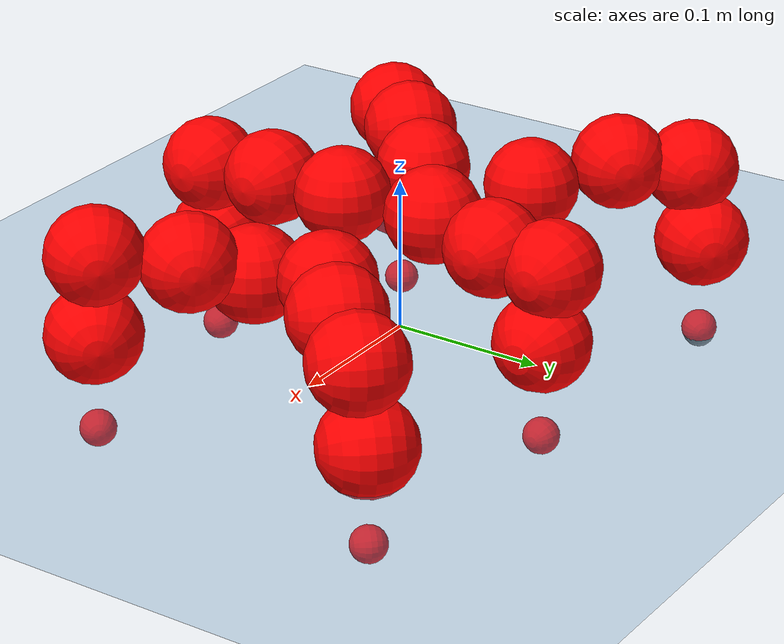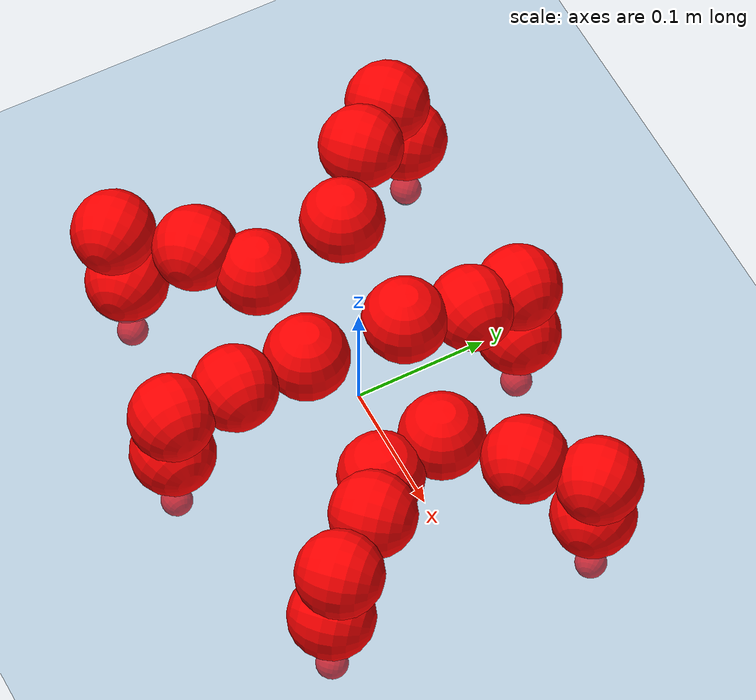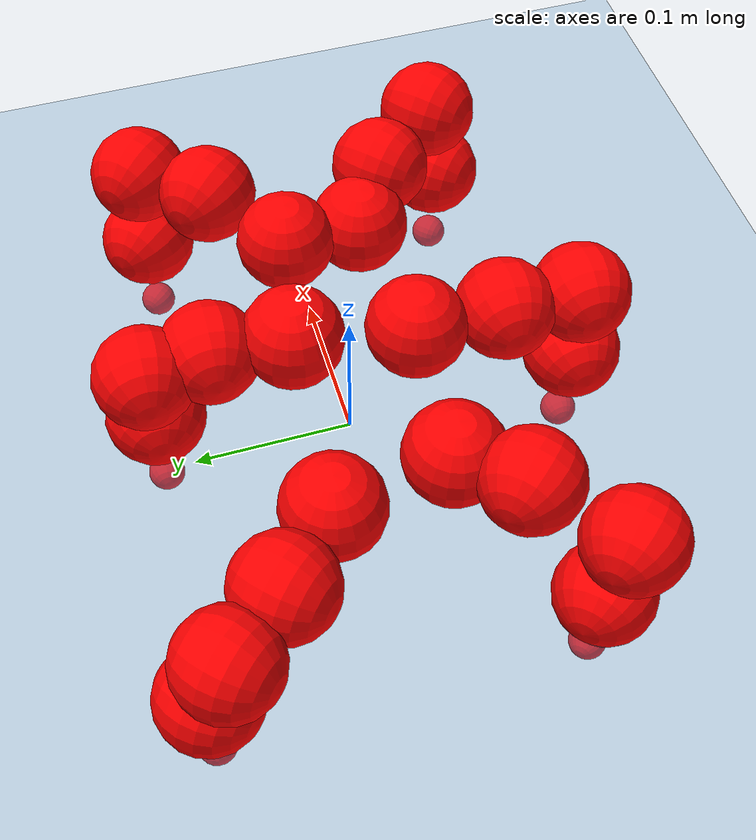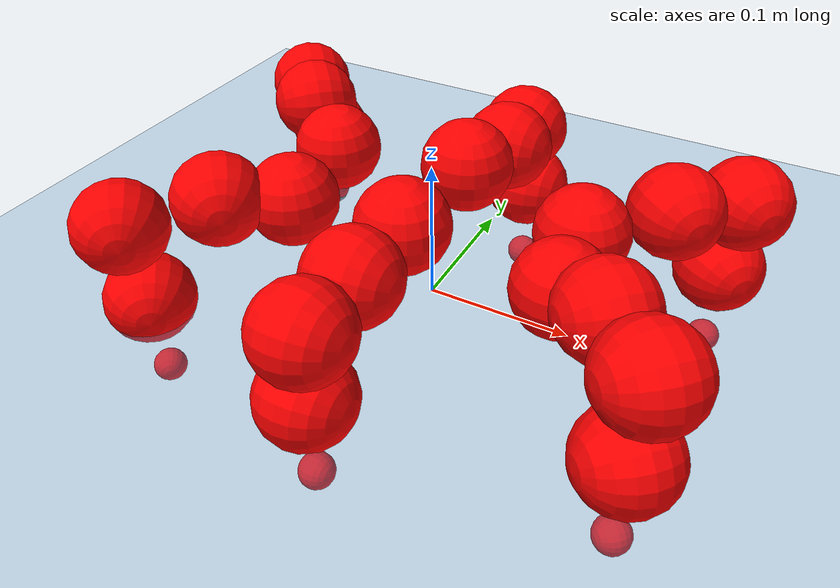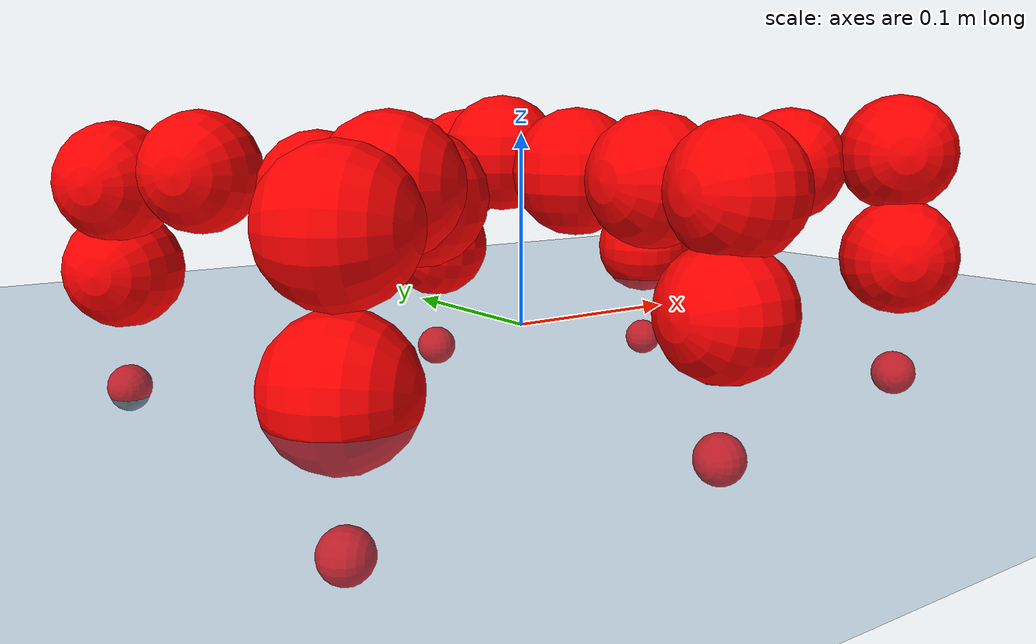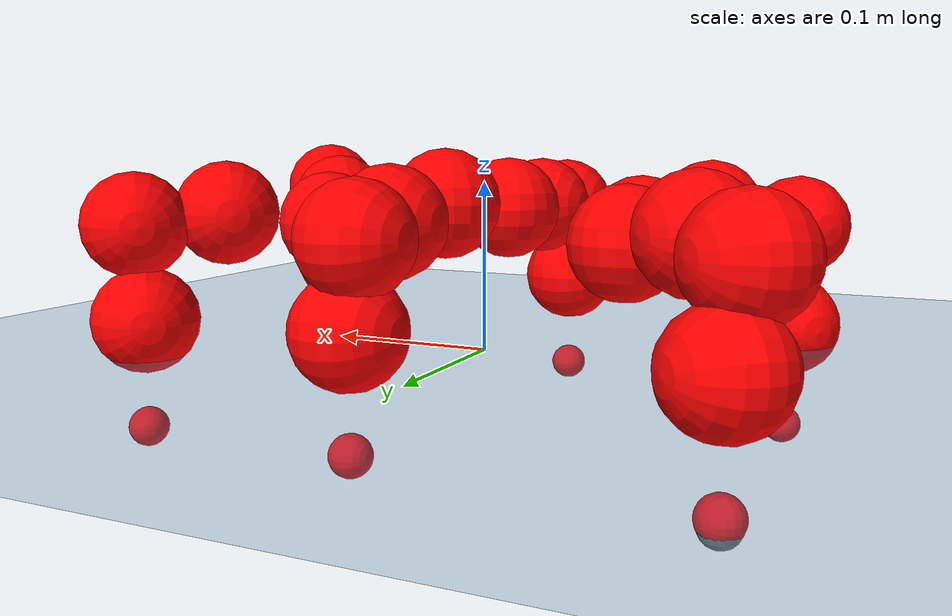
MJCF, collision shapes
<mujoco model="Golem">
  <compiler angle="radian" assetdir="assets" balanceinertia="true" inertiafromgeom="false"/>

  <option timestep="0.005" density="1.2" viscosity="2e-05"/>

  <size nkey="1"/>

  <visual>
    <quality shadowsize="8192"/>
    <map shadowclip="0.5"/>
  </visual>

  <default>
    <default class="/">
      <joint armature="0.01" damping="0.01" frictionloss="0.01"/>
      <geom contype="0" conaffinity="0" group="1" solref="-1000 -80"/>
      <site size="0.01 0.005 0.005" group="5"/>
      <general forcelimited="true" biastype="affine" gainprm="25" biasprm="0 -25 -0.5"/>
      <default class="visual">
        <geom type="mesh" group="2"/>
      </default>
      <default class="collision">
        <geom group="3"/>
      </default>
      <default class="foot">
        <geom size="0.01 0 0" condim="6" group="4" priority="1" solimp="0.015 1 0.01"/>
      </default>
      <default class="reward_collision_sphere">
        <geom group="5" rgba="1 0 0 1"/>
      </default>
    </default>
  </default>

  <asset>
    <texture type="skybox" colorspace="auto" name="//unnamed_texture_0" builtin="gradient" rgb1="0.95 0.95 0.95" rgb2="0.95 0.95 0.95" width="100" height="600"/>
    <texture type="2d" colorspace="auto" name="texplane" builtin="checker" rgb1="0.345 0.575 0.748" rgb2="0.345 0.575 0.748" markrgb="1 1 1" width="512" height="512"/>
    <material name="MatPlane" class="/" texture="texplane" texuniform="true" texrepeat="2 2" specular="0.9"/>
    <mesh name="body" class="/" file="body.stl" scale="0.001 0.001 0.001"/>
    <mesh name="coxa" class="/" file="coxa.stl" scale="0.001 0.001 0.001"/>
    <mesh name="femur" class="/" file="femur.stl" scale="0.001 0.001 0.001"/>
    <mesh name="tibia" class="/" file="tibia.stl" scale="0.001 0.001 0.001"/>
    <mesh name="tarsus" class="/" file="tarsus.stl" scale="0.001 0.001 0.001"/>
  </asset>

  <worldbody>
    <geom name="floor" class="/" size="100 100 0.125" type="plane" group="0" material="MatPlane"/>
    <light name="toplight_shadow" class="/" pos="0 0 5" dir="0.0990148 0.0990148 -0.990148" type="directional" ambient="0.04 0.04 0.04" diffuse="0.55 0.55 0.55" specular="0.12 0.12 0.12"/>
    <light name="toplight_fill" class="/" pos="0 0 5" dir="0.0990148 0.0990148 -0.990148" type="directional" castshadow="false" ambient="0.04 0.04 0.04" diffuse="0.3 0.3 0.3" specular="0.08 0.08 0.08"/>
    <body name="trunk" pos="0.00127859 -0.00122221 -0.00208795" quat="0.999979 0.00515158 -0.00334638 -0.00183926">
      <inertial pos="-0.00283273 -0.00175204 -0.00535371" quat="1 -4.21762e-05 -2.66191e-05 -0.000103954" mass="1.43891" diaginertia="0.000701881 0.00027667 0.0293821"/>
      <joint name="//unnamed_joint_0" type="free"/>
      <geom name="//unnamed_geom_1" class="/" pos="0 0 0.0801916" quat="1 0 0 0" type="mesh" rgba="0.9 0.9 0.9 1" mesh="body"/>
      <site name="imu" class="/" pos="0.017362 0.0328594 0.133335" size="0.00775528"/>
      <camera name="track" class="/" pos="0 -0.961626 0" quat="0.707107 0.707107 0 0" mode="trackcom"/>
      <camera name="ego_camera" class="/" pos="0.0770609 0 0.125299" quat="-0.5 -0.5 0.5 0.5"/>
      <body name="coxa_RR" pos="-0.0968326 -0.0482961 0.0756461" quat="0.378565 0.00411871 0.0017956 -0.925564">
        <inertial pos="0.00155552 -0.00233738 -0.00887103" quat="0.999308 0.00409655 0.0237488 0.0283243" mass="0.0840446" diaginertia="0.000636681 0.000231358 0.0268124"/>
        <joint name="coxa_joint_RR" class="/" pos="0 0 0" axis="-0.000874914 0.000834624 -0.999999" range="-2.95638 3.36202" armature="0.00785749" damping="0.00628938" frictionloss="0.00514739"/>
        <geom name="//unnamed_geom_2" class="/" type="mesh" rgba="0.2 0.2 0.2 1" mesh="coxa"/>
        <geom name="//unnamed_geom_3" class="reward_collision_sphere" size="0.0310211" pos="-0.0177833 0 0"/>
        <body name="femur_RR" pos="0.0284912 -0.000333118 0.00948624" quat="0.499714 -0.499838 0.500073 0.500375">
          <inertial pos="0.00207879 -0.000920581 0.00188281" quat="0.999994 0.000969091 0.000831166 -0.0032046" mass="0.0961476" diaginertia="0.000694952 0.000241902 0.0326308"/>
          <joint name="femur_joint_RR" class="/" pos="0 0 0" axis="0.0234902 -0.0120504 -0.999651" range="-3.36078 3.16118" armature="0.0116765" damping="0.0334013" frictionloss="0.00894632"/>
          <geom name="//unnamed_geom_4" class="/" type="mesh" rgba="0.9 0.9 0.9 1" mesh="femur"/>
          <geom name="//unnamed_geom_5" class="reward_collision_sphere" size="0.0310211"/>
          <body name="tibia_RR" pos="0.00879274 -0.0625006 -0.00110922" quat="-0.00321077 0.999991 0.00148498 0.00222584">
            <inertial pos="-0.00957629 -0.00630318 -0.00229176" quat="0.999996 -0.000637117 0.00194501 -0.00209914" mass="0.0817349" diaginertia="0.000757601 0.000251067 0.0345121"/>
            <joint name="tibia_joint_RR" class="/" pos="0 0 0" axis="-0.0249599 0.0515562 0.998358" range="-3.36952 3.15918" armature="0.0110178" damping="0.0425748" frictionloss="0.00804685"/>
            <geom name="//unnamed_geom_6" class="/" type="mesh" rgba="0.2 0.2 0.2 1" mesh="tibia"/>
            <geom name="//unnamed_geom_7" class="reward_collision_sphere" size="0.0310211"/>
            <body name="tarsus_RR" pos="0.0612652 -0.00504254 0.00293747" quat="0.999998 0.000102529 -0.00169949 0.000993853">
              <inertial pos="0.0375952 0.00186328 -8.59144e-05" quat="0.497896 0.502219 0.495335 0.504499" mass="0.0853652" diaginertia="0.000628677 0.00025637 0.0260194"/>
              <joint name="tarsus_joint_RR" class="/" pos="0 0 0" axis="0.0440923 -0.0207587 0.998812" range="-3.034 3.15207" armature="0.00832912" damping="0" frictionloss="0.00729912"/>
              <geom name="//unnamed_geom_8" class="/" type="mesh" rgba="0.9 0.9 0.9 1" mesh="tarsus"/>
              <geom name="foot_1" class="foot" size="0.00675412" pos="0.066391 0 0" quat="0 -0.707107 0 0.707107"/>
              <geom name="//unnamed_geom_10" class="reward_collision_sphere" size="0.0310211"/>
              <geom name="//unnamed_geom_11" class="reward_collision_sphere" size="0.0116329" pos="0.0637235 0 0"/>
              <site name="foot_1" class="foot" pos="0.066391 0 0" quat="0 -0.707107 0 0.707107" size="0.00775528"/>
            </body>
          </body>
        </body>
      </body>
      <body name="coxa_RM" pos="0.00165927 -0.0576948 0.0845644" quat="0.704006 -0.00211795 0.0027393 -0.710185">
        <inertial pos="-0.00518077 0.0103562 -0.00339585" quat="0.999996 -0.000441633 -0.00132926 0.00258283" mass="0.10885" diaginertia="0.000866347 0.000261714 0.0313199"/>
        <joint name="coxa_joint_RM" class="/" pos="0 0 0" axis="-0.0235099 0.0453343 -0.998695" stiffness="0.00910028" range="-3.16323 2.94683" armature="0.00340697" damping="0.0309325" frictionloss="0.0109201"/>
        <geom name="//unnamed_geom_12" class="/" type="mesh" rgba="0.2 0.2 0.2 1" mesh="coxa"/>
        <geom name="//unnamed_geom_13" class="reward_collision_sphere" size="0.0310211" pos="-0.0177833 0 0"/>
        <body name="femur_RM" pos="0.0375071 1.01031e-05 -0.000692551" quat="0.49955 -0.499712 0.500449 0.500289">
          <inertial pos="-0.00726192 -0.00270156 -0.000213103" quat="0.999947 -0.00506656 -0.00632307 0.00629251" mass="0.0781987" diaginertia="0.000750791 0.000242824 0.0292236"/>
          <joint name="femur_joint_RM" class="/" pos="0 0 0" axis="0.0062413 -0.0165715 -0.999843" range="-3.02757 3.11134" armature="0.00793834" damping="0" frictionloss="0.00476695"/>
          <geom name="//unnamed_geom_14" class="/" type="mesh" rgba="0.9 0.9 0.9 1" mesh="femur"/>
          <geom name="//unnamed_geom_15" class="reward_collision_sphere" size="0.0310211"/>
          <body name="tibia_RM" pos="0.00129299 -0.0491984 0.00109024" quat="7.51591e-05 1 -6.95082e-05 -3.36399e-05">
            <inertial pos="-0.00418049 0.000250845 0.0105446" quat="0.998752 0.00561805 0.0466079 -0.017041" mass="0.0938139" diaginertia="0.000643234 0.000264693 0.0276233"/>
            <joint name="tibia_joint_RM" class="/" pos="0 0 0" axis="0.0074688 -0.000542567 0.999972" range="-3.16493 3.2319" armature="0.00400997" damping="0" frictionloss="0.00296144"/>
            <geom name="//unnamed_geom_16" class="/" type="mesh" rgba="0.2 0.2 0.2 1" mesh="tibia"/>
            <geom name="//unnamed_geom_17" class="reward_collision_sphere" size="0.0310211"/>
            <body name="tarsus_RM" pos="0.0509227 -0.000208169 0.00360456" quat="1 -1.03822e-05 8.78169e-05 -1.9054e-05">
              <inertial pos="0.0277303 0.00237764 0.000733307" quat="0.530337 0.476813 0.492551 0.498784" mass="0.0919956" diaginertia="0.00068494 0.00024304 0.0339042"/>
              <joint name="tarsus_joint_RM" class="/" pos="0 0 0" axis="0.000453221 0.000168521 1" range="-3.37047 3.02667" armature="0.00292656" damping="0" frictionloss="0.00815925"/>
              <geom name="//unnamed_geom_18" class="/" type="mesh" rgba="0.9 0.9 0.9 1" mesh="tarsus"/>
              <geom name="foot_2" class="foot" size="0.00450622" pos="0.066391 0 0" quat="0 -0.707107 0 0.707107"/>
              <geom name="//unnamed_geom_20" class="reward_collision_sphere" size="0.0310211"/>
              <geom name="//unnamed_geom_21" class="reward_collision_sphere" size="0.0116329" pos="0.0637235 0 0"/>
              <site name="foot_2" class="foot" pos="0.066391 0 0" quat="0 -0.707107 0 0.707107" size="0.00775528"/>
            </body>
          </body>
        </body>
      </body>
      <body name="coxa_RF" pos="0.115812 -0.046659 0.0697375" quat="0.923896 -2.20573e-05 -5.42641e-05 -0.382645">
        <inertial pos="0.00855551 0.0130478 -0.00733873" quat="0.999165 -0.0396772 0.00648113 -0.00729343" mass="0.0984027" diaginertia="0.000669879 0.00025672 0.0314991"/>
        <joint name="coxa_joint_RF" class="/" pos="0 0 0" axis="-0.00545592 0.00489597 -0.999973" stiffness="0.00104001" range="-3.0448 2.91482" armature="0.0103618" damping="0" frictionloss="0.00784703"/>
        <geom name="//unnamed_geom_22" class="/" type="mesh" rgba="0.2 0.2 0.2 1" mesh="coxa"/>
        <geom name="//unnamed_geom_23" class="reward_collision_sphere" size="0.0310211" pos="-0.0177833 0 0"/>
        <body name="femur_RF" pos="0.0224031 0.00713461 0.0143478" quat="0.504064 -0.497683 0.497445 0.50078">
          <inertial pos="-0.00169481 0.00831642 -0.0110082" quat="0.998322 0.0428889 -0.000955674 -0.0389044" mass="0.0938867" diaginertia="0.000780897 0.000288598 0.0308849"/>
          <joint name="femur_joint_RF" class="/" pos="0 0 0" axis="0.0155812 -0.00942121 -0.999834" range="-3.29678 3.13116" armature="0.00679043" damping="0.0346888" frictionloss="0.0119989"/>
          <geom name="//unnamed_geom_24" class="/" type="mesh" rgba="0.9 0.9 0.9 1" mesh="femur"/>
          <geom name="//unnamed_geom_25" class="reward_collision_sphere" size="0.0310211"/>
          <body name="tibia_RF" pos="-0.00686224 -0.0556976 -0.00536751" quat="-0.000348582 0.999991 -0.00146475 -0.00387853">
            <inertial pos="-0.00193812 -0.00612961 0.00400952" quat="0.999259 0.0147708 0.0342821 0.00941365" mass="0.0911547" diaginertia="0.000713322 0.000264286 0.0325804"/>
            <joint name="tibia_joint_RF" class="/" pos="0 0 0" axis="0.0327243 0.0401151 0.998659" range="-3.10521 3.10435" armature="0.00938482" damping="0.012813" frictionloss="0.00769891"/>
            <geom name="//unnamed_geom_26" class="/" type="mesh" rgba="0.2 0.2 0.2 1" mesh="tibia"/>
            <geom name="//unnamed_geom_27" class="reward_collision_sphere" size="0.0310211"/>
            <body name="tarsus_RF" pos="0.0543345 0.00206954 0.00599624" quat="0.999985 -6.2351e-05 -0.00534003 0.000970308">
              <inertial pos="0.0464098 0.000386901 -0.0127109" quat="0.522068 0.517801 0.470941 0.487383" mass="0.114963" diaginertia="0.000720569 0.000295688 0.0356712"/>
              <joint name="tarsus_joint_RF" class="/" pos="0 0 0" axis="0.0390428 0.04252 0.998332" stiffness="0.000206274" range="-3.37221 3.09412" armature="0.00787478" damping="0" frictionloss="0.00478131"/>
              <geom name="//unnamed_geom_28" class="/" type="mesh" rgba="0.9 0.9 0.9 1" mesh="tarsus"/>
              <geom name="foot_3" class="foot" size="0.00689461" pos="0.066391 0 0" quat="0 -0.707107 0 0.707107"/>
              <geom name="//unnamed_geom_30" class="reward_collision_sphere" size="0.0310211"/>
              <geom name="//unnamed_geom_31" class="reward_collision_sphere" size="0.0116329" pos="0.0637235 0 0"/>
              <site name="foot_3" class="foot" pos="0.066391 0 0" quat="0 -0.707107 0 0.707107" size="0.00775528"/>
            </body>
          </body>
        </body>
      </body>
      <body name="coxa_LR" pos="-0.110125 0.0512128 0.0739189" quat="0.387548 0.00149862 -0.0012847 0.921848">
        <inertial pos="-0.010534 0.002068 0.00699502" quat="0.999015 -0.0389101 -0.0125984 0.0171859" mass="0.0908733" diaginertia="0.000699759 0.000251572 0.0302313"/>
        <joint name="coxa_joint_LR" class="/" pos="0 0 0" axis="-0.0522545 0.0232132 -0.998364" stiffness="0.00529592" range="-3.10798 3.14567" armature="0.00956412" damping="0.0451569" frictionloss="0.00714826"/>
        <geom name="//unnamed_geom_32" class="/" type="mesh" rgba="0.2 0.2 0.2 1" mesh="coxa"/>
        <geom name="//unnamed_geom_33" class="reward_collision_sphere" size="0.0310211" pos="-0.0177833 0 0"/>
        <body name="femur_LR" pos="0.041317 0.00546894 0.00951504" quat="0.504104 -0.499296 0.499863 0.496709">
          <inertial pos="-0.00378562 0.0002899 0.00232258" quat="0.999969 -0.00253853 0.00531143 0.00517088" mass="0.0936266" diaginertia="0.000732564 0.00025258 0.0287042"/>
          <joint name="femur_joint_LR" class="/" pos="0 0 0" axis="-0.00032421 -0.00243233 0.999997" range="-3.2478 2.88016" armature="0.00707173" damping="0" frictionloss="0.00293873"/>
          <geom name="//unnamed_geom_34" class="/" type="mesh" rgba="0.9 0.9 0.9 1" mesh="femur"/>
          <geom name="//unnamed_geom_35" class="reward_collision_sphere" size="0.0310211"/>
          <body name="tibia_LR" pos="0.00641373 -0.0478038 -0.00373507" quat="-5.30786e-05 1 1.86424e-05 5.27352e-05">
            <inertial pos="-0.00252671 0.00134934 -0.000846662" quat="0.999925 0.00709814 -0.0078171 0.00628003" mass="0.101753" diaginertia="0.00074455 0.000234421 0.0311773"/>
            <joint name="tibia_joint_LR" class="/" pos="0 0 0" axis="-0.00350129 0.0154556 -0.999874" stiffness="0.00924069" range="-3.19471 3.34666" armature="0.0125617" damping="0" frictionloss="0.0100338"/>
            <geom name="//unnamed_geom_36" class="/" type="mesh" rgba="0.2 0.2 0.2 1" mesh="tibia"/>
            <geom name="//unnamed_geom_37" class="reward_collision_sphere" size="0.0310211"/>
            <body name="tarsus_LR" pos="0.0465049 0.00487995 0.0119211" quat="0.999999 -0.00113683 -9.87052e-05 0.000600388">
              <inertial pos="0.0371807 0.00442736 -0.000127081" quat="0.498605 0.502847 0.495466 0.503042" mass="0.093063" diaginertia="0.00071717 0.000264878 0.0308171"/>
              <joint name="tarsus_joint_LR" class="/" pos="0 0 0" axis="-0.0108498 0.00275872 -0.999937" stiffness="0.0272141" range="-3.36227 3.11499" armature="0.00719973" damping="0.0698039" frictionloss="0.00754574"/>
              <geom name="//unnamed_geom_38" class="/" type="mesh" rgba="0.9 0.9 0.9 1" mesh="tarsus"/>
              <geom name="foot_4" class="foot" size="0.0105832" pos="0.066391 0 0" quat="0.707107 0 -0.707107 0"/>
              <geom name="//unnamed_geom_40" class="reward_collision_sphere" size="0.0310211"/>
              <geom name="//unnamed_geom_41" class="reward_collision_sphere" size="0.0116329" pos="0.0637235 0 0"/>
              <site name="foot_4" class="foot" pos="0.066391 0 0" quat="0.707107 0 -0.707107 0" size="0.00775528"/>
            </body>
          </body>
        </body>
      </body>
      <body name="coxa_LM" pos="0.00939002 0.0510397 0.0904953" quat="0.710406 0.00378829 0.00236341 0.703778">
        <inertial pos="0.0045225 0.000508899 -0.0067849" quat="1 7.30469e-05 -0.000128458 0.000358824" mass="0.0815861" diaginertia="0.00051853 0.000216254 0.0242513"/>
        <joint name="coxa_joint_LM" class="/" pos="0 0 0" axis="0.00224874 0.000386751 -0.999997" range="-2.94995 3.16731" armature="0.011143" damping="0" frictionloss="0.00425002"/>
        <geom name="//unnamed_geom_42" class="/" type="mesh" rgba="0.2 0.2 0.2 1" mesh="coxa"/>
        <geom name="//unnamed_geom_43" class="reward_collision_sphere" size="0.0310211" pos="-0.0177833 0 0"/>
        <body name="femur_LM" pos="0.0306336 -0.00760818 -0.00780441" quat="0.500037 -0.499916 0.500107 0.499941">
          <inertial pos="-0.000971495 0.00809111 -0.00135165" quat="0.999442 -0.0239957 0.00630225 -0.0223817" mass="0.118392" diaginertia="0.000872449 0.000300748 0.0360724"/>
          <joint name="femur_joint_LM" class="/" pos="0 0 0" axis="0.0156889 -0.0191173 0.999694" range="-3.18072 3.13102" armature="0.01018" damping="0" frictionloss="0.00497707"/>
          <geom name="//unnamed_geom_44" class="/" type="mesh" rgba="0.9 0.9 0.9 1" mesh="femur"/>
          <geom name="//unnamed_geom_45" class="reward_collision_sphere" size="0.0310211"/>
          <body name="tibia_LM" pos="0.00572352 -0.0397018 0.00381664" quat="-0.000217591 1 0.000101104 -0.000141605">
            <inertial pos="0.0117262 -0.0130668 5.09486e-05" quat="1 0.0001505 -0.000137715 -0.000146308" mass="0.0813124" diaginertia="0.000804291 0.00025707 0.0304738"/>
            <joint name="tibia_joint_LM" class="/" pos="0 0 0" axis="0.000799175 0.00583535 -0.999983" range="-3.30675 3.13816" armature="0.00714787" damping="0" frictionloss="0.010196"/>
            <geom name="//unnamed_geom_46" class="/" type="mesh" rgba="0.2 0.2 0.2 1" mesh="tibia"/>
            <geom name="//unnamed_geom_47" class="reward_collision_sphere" size="0.0310211"/>
            <body name="tarsus_LM" pos="0.0468719 -0.00270112 0.0062446" quat="1 0.000487864 0.000274313 -6.05847e-06">
              <inertial pos="0.0396829 0.00173013 -0.000776367" quat="0.500112 0.500163 0.499927 0.499798" mass="0.10053" diaginertia="0.000727128 0.000252859 0.0269777"/>
              <joint name="tarsus_joint_LM" class="/" pos="0 0 0" axis="-0.0340609 0.0317845 -0.998914" stiffness="0.00679858" range="-3.19471 3.30301" armature="0.00766477" damping="0" frictionloss="0.0113826"/>
              <geom name="//unnamed_geom_48" class="/" type="mesh" rgba="0.9 0.9 0.9 1" mesh="tarsus"/>
              <geom name="foot_5" class="foot" size="0.00765166" pos="0.066391 0 0" quat="0.707107 0 -0.707107 0"/>
              <geom name="//unnamed_geom_50" class="reward_collision_sphere" size="0.0310211"/>
              <geom name="//unnamed_geom_51" class="reward_collision_sphere" size="0.0116329" pos="0.0637235 0 0"/>
              <site name="foot_5" class="foot" pos="0.066391 0 0" quat="0.707107 0 -0.707107 0" size="0.00775528"/>
            </body>
          </body>
        </body>
      </body>
      <body name="coxa_LF" pos="0.10991 0.0285338 0.0751736" quat="0.92487 0.00056678 0.000666576 0.380282">
        <inertial pos="5.20445e-05 0.0081654 0.000901468" quat="0.999944 0.0089039 -0.00250064 0.00519946" mass="0.105444" diaginertia="0.000806518 0.000320694 0.0337454"/>
        <joint name="coxa_joint_LF" class="/" pos="0 0 0" axis="0.0228669 0.000604968 -0.999738" stiffness="0.0163713" range="-2.98453 3.21351" armature="0.0081109" damping="0.0287179" frictionloss="0.00551461"/>
        <geom name="//unnamed_geom_52" class="/" type="mesh" rgba="0.2 0.2 0.2 1" mesh="coxa"/>
        <geom name="//unnamed_geom_53" class="reward_collision_sphere" size="0.0310211" pos="-0.0177833 0 0"/>
        <body name="femur_LF" pos="0.0432129 -0.00466054 0.00623241" quat="0.500298 -0.502742 0.498529 0.498419">
          <inertial pos="-0.00271702 -0.00137448 -1.78102e-05" quat="0.998018 -0.0584409 -0.00386568 0.0230219" mass="0.0908634" diaginertia="0.000744053 0.000286352 0.0328445"/>
          <joint name="femur_joint_LF" class="/" pos="0 0 0" axis="0.0307739 -0.00315458 0.999521" range="-3.11684 3.24081" armature="0.00756266" damping="0" frictionloss="0.0128016"/>
          <geom name="//unnamed_geom_54" class="/" type="mesh" rgba="0.9 0.9 0.9 1" mesh="femur"/>
          <geom name="//unnamed_geom_55" class="reward_collision_sphere" size="0.0310211"/>
          <body name="tibia_LF" pos="0.00641757 -0.0524267 0.00256625" quat="0.000131637 1 0.000551208 0.000181875">
            <inertial pos="-0.00210177 0.000767869 0.000877192" quat="0.999608 -0.0252284 0.00951512 -0.00753095" mass="0.0843907" diaginertia="0.000755755 0.000273923 0.0330276"/>
            <joint name="tibia_joint_LF" class="/" pos="0 0 0" axis="0.0147048 -0.0259049 -0.999556" range="-2.89431 3.15905" armature="0.00520297" damping="0" frictionloss="0.010684"/>
            <geom name="//unnamed_geom_56" class="/" type="mesh" rgba="0.2 0.2 0.2 1" mesh="tibia"/>
            <geom name="//unnamed_geom_57" class="reward_collision_sphere" size="0.0310211"/>
            <body name="tarsus_LF" pos="0.0549632 -0.0040333 -0.00567559" quat="1 -0.000326786 -0.000406049 0.000465704">
              <inertial pos="0.0402652 0.00135618 -0.0120055" quat="0.500076 0.498088 0.496544 0.505249" mass="0.0996897" diaginertia="0.000739982 0.00026892 0.0325415"/>
              <joint name="tarsus_joint_LF" class="/" pos="0 0 0" axis="0.01094 -0.041634 -0.999073" range="-3.14682 3.0066" armature="0.00808043" damping="0.0664095" frictionloss="0.00764038"/>
              <geom name="//unnamed_geom_58" class="/" type="mesh" rgba="0.9 0.9 0.9 1" mesh="tarsus"/>
              <geom name="foot_6" class="foot" size="0.00735478" pos="0.066391 0 0" quat="0.707107 0 -0.707107 0"/>
              <geom name="//unnamed_geom_60" class="reward_collision_sphere" size="0.0310211"/>
              <geom name="//unnamed_geom_61" class="reward_collision_sphere" size="0.0116329" pos="0.0637235 0 0"/>
              <site name="foot_6" class="foot" pos="0.066391 0 0" quat="0.707107 0 -0.707107 0" size="0.00775528"/>
            </body>
          </body>
        </body>
      </body>
    </body>
  </worldbody>

  <contact>
    <pair class="/" geom1="floor" geom2="foot_1" name="//unnamed_contact_0"/>
    <pair class="/" geom1="floor" geom2="foot_2" name="//unnamed_contact_1"/>
    <pair class="/" geom1="floor" geom2="foot_3" name="//unnamed_contact_2"/>
    <pair class="/" geom1="floor" geom2="foot_4" name="//unnamed_contact_3"/>
    <pair class="/" geom1="floor" geom2="foot_5" name="//unnamed_contact_4"/>
    <pair class="/" geom1="floor" geom2="foot_6" name="//unnamed_contact_5"/>
  </contact>

  <actuator>
    <general name="coxa_joint_RR" class="/" joint="coxa_joint_RR" forcerange="-3.92163 3.92163" gainprm="25.322" biasprm="0 -25.322 -0.501547"/>
    <general name="femur_joint_RR" class="/" joint="femur_joint_RR" forcerange="-4.66969 4.66969" gainprm="25.322" biasprm="0 -25.322 -0.501547"/>
    <general name="tibia_joint_RR" class="/" joint="tibia_joint_RR" forcerange="-6.10789 6.10789" gainprm="25.322" biasprm="0 -25.322 -0.501547"/>
    <general name="tarsus_joint_RR" class="/" joint="tarsus_joint_RR" forcerange="-5.39036 5.39036" gainprm="25.322" biasprm="0 -25.322 -0.501547"/>
    <general name="coxa_joint_RM" class="/" joint="coxa_joint_RM" forcerange="-3.88557 3.88557" gainprm="25.322" biasprm="0 -25.322 -0.501547"/>
    <general name="femur_joint_RM" class="/" joint="femur_joint_RM" forcerange="-3.61584 3.61584" gainprm="25.322" biasprm="0 -25.322 -0.501547"/>
    <general name="tibia_joint_RM" class="/" joint="tibia_joint_RM" forcerange="-6.7042 6.7042" gainprm="25.322" biasprm="0 -25.322 -0.501547"/>
    <general name="tarsus_joint_RM" class="/" joint="tarsus_joint_RM" forcerange="-3.05094 3.05094" gainprm="25.322" biasprm="0 -25.322 -0.501547"/>
    <general name="coxa_joint_RF" class="/" joint="coxa_joint_RF" forcerange="-3.3593 3.3593" gainprm="25.322" biasprm="0 -25.322 -0.501547"/>
    <general name="femur_joint_RF" class="/" joint="femur_joint_RF" forcerange="-7.9791 7.9791" gainprm="25.322" biasprm="0 -25.322 -0.501547"/>
    <general name="tibia_joint_RF" class="/" joint="tibia_joint_RF" forcerange="-6.61203 6.61203" gainprm="25.322" biasprm="0 -25.322 -0.501547"/>
    <general name="tarsus_joint_RF" class="/" joint="tarsus_joint_RF" forcerange="-5.87049 5.87049" gainprm="25.322" biasprm="0 -25.322 -0.501547"/>
    <general name="coxa_joint_LR" class="/" joint="coxa_joint_LR" forcerange="-4.50004 4.50004" gainprm="25.322" biasprm="0 -25.322 -0.501547"/>
    <general name="femur_joint_LR" class="/" joint="femur_joint_LR" forcerange="-7.32033 7.32033" gainprm="25.322" biasprm="0 -25.322 -0.501547"/>
    <general name="tibia_joint_LR" class="/" joint="tibia_joint_LR" forcerange="-6.65728 6.65728" gainprm="25.322" biasprm="0 -25.322 -0.501547"/>
    <general name="tarsus_joint_LR" class="/" joint="tarsus_joint_LR" forcerange="-5.71008 5.71008" gainprm="25.322" biasprm="0 -25.322 -0.501547"/>
    <general name="coxa_joint_LM" class="/" joint="coxa_joint_LM" forcerange="-5.72632 5.72632" gainprm="25.322" biasprm="0 -25.322 -0.501547"/>
    <general name="femur_joint_LM" class="/" joint="femur_joint_LM" forcerange="-5.76267 5.76267" gainprm="25.322" biasprm="0 -25.322 -0.501547"/>
    <general name="tibia_joint_LM" class="/" joint="tibia_joint_LM" forcerange="-8.25245 8.25245" gainprm="25.322" biasprm="0 -25.322 -0.501547"/>
    <general name="tarsus_joint_LM" class="/" joint="tarsus_joint_LM" forcerange="-5.76373 5.76373" gainprm="25.322" biasprm="0 -25.322 -0.501547"/>
    <general name="coxa_joint_LF" class="/" joint="coxa_joint_LF" forcerange="-3.59255 3.59255" gainprm="25.322" biasprm="0 -25.322 -0.501547"/>
    <general name="femur_joint_LF" class="/" joint="femur_joint_LF" forcerange="-3.51478 3.51478" gainprm="25.322" biasprm="0 -25.322 -0.501547"/>
    <general name="tibia_joint_LF" class="/" joint="tibia_joint_LF" forcerange="-5.32065 5.32065" gainprm="25.322" biasprm="0 -25.322 -0.501547"/>
    <general name="tarsus_joint_LF" class="/" joint="tarsus_joint_LF" forcerange="-6.20724 6.20724" gainprm="25.322" biasprm="0 -25.322 -0.501547"/>
  </actuator>

  <sensor>
    <gyro site="imu" name="imu_angular_velocity"/>
    <velocimeter site="imu" name="imu_linear_velocity"/>
    <framelinvel objtype="site" objname="foot_1" name="foot_1_global_linear_velocity"/>
    <framelinvel objtype="site" objname="foot_2" name="foot_2_global_linear_velocity"/>
    <framelinvel objtype="site" objname="foot_3" name="foot_3_global_linear_velocity"/>
    <framelinvel objtype="site" objname="foot_4" name="foot_4_global_linear_velocity"/>
    <framelinvel objtype="site" objname="foot_5" name="foot_5_global_linear_velocity"/>
    <framelinvel objtype="site" objname="foot_6" name="foot_6_global_linear_velocity"/>
  </sensor>

  <keyframe>
    <key name="home" qpos="0 0 0.1457 1 0 0 0 0 0 0 0 0 0 0 0 0 0 0 0 0 0 0 0 0 0 0 0 0 0 0 0"/>
  </keyframe>
</mujoco>
